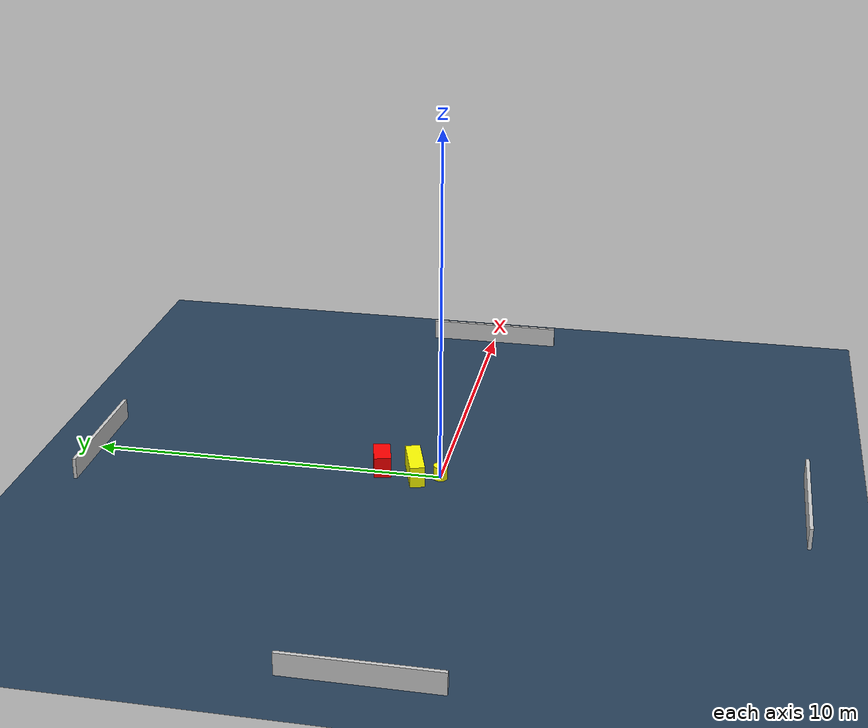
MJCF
<?xml version="1.0" ?>
<mujoco model="generated_environment">
  <option timestep="0.01" integrator="RK4" cone="elliptic"/>
  <default>
    <geom density="1"/>
  </default>
  <asset>
    <texture builtin="gradient" height="3072" name="skybox" rgb1="0.3 0.5 0.7" rgb2="0 0 0" type="skybox" width="512"/>
    <texture builtin="checker" height="300" name="groundplane" rgb1="0.2 0.3 0.4" rgb2="0.1 0.2 0.3" type="2d" width="300"/>
    <material name="groundplane" reflectance="0.2" texrepeat="5 5" texture="groundplane"/>
  </asset>
  <worldbody>
    <light dir="0 0 -1" directional="true" pos="0 0 1.5"/>
    <geom condim="3" friction="0.5 0.005 0.001" material="groundplane" name="floor" pos="0 0 0" size="0 0 0.05" type="plane"/>
    <body name="walls">
      <geom name="wall_1" condim="4" pos="-10.0 0.0 0.3" rgba="0.800000011920929 0.800000011920929 0.800000011920929 1.0" size="0.05 2.0 0.3" type="box"/>
      <geom name="wall_2" condim="4" pos="10.0 0.0 0.3" rgba="0.800000011920929 0.800000011920929 0.800000011920929 1.0" size="0.05 2.0 0.3" type="box"/>
      <geom name="wall_3" condim="4" pos="0.0 -10.0 0.3" rgba="0.800000011920929 0.800000011920929 0.800000011920929 1.0" size="2.0 0.05 0.3" type="box"/>
      <geom name="wall_4" condim="4" pos="0.0 10.0 0.3" rgba="0.800000011920929 0.800000011920929 0.800000011920929 1.0" size="2.0 0.05 0.3" type="box"/>
    </body>
    <body name="robot">
      <joint name="joint_x" type="slide" pos="0 0 0" axis="1 0 0"/>
      <joint name="joint_y" type="slide" pos="0 0 0" axis="0 1 0"/>
      <geom name="robot" type="cylinder" pos="0.0 0.0 0.2" size="0.2 0.2 0.0" mass="5.0" friction="1.0 0.005 0.0001" condim="4" rgba="1.0 1.0 0.0 1.0"/>
    </body>
    <body name="obstacle_1_movable">
      <geom name="obstacle_1_movable" condim="4" pos="0.011605564623852708 0.7302546006651104 0.3" euler="0 0 286.8159209614551" friction="0.0 0.005 0.001" rgba="1.0 1.0 0.0 1.0" size="0.21115298604767918 0.6948871418330148 0.3" type="box" mass="0.1"/>
      <joint type="free"/>
    </body>
    <body name="obstacle_2_static">
      <geom name="obstacle_2_static" condim="4" pos="0.15619118593578038 1.702225196114092 0.3" euler="0 0 104.15514868121586" friction="0.0 0.005 0.001" rgba="1.0 0.0 0.0 1.0" size="0.24158948750559212 0.4550655995469996 0.3" type="box"/>
    </body>
  </worldbody>
  <actuator>
    <motor name="actuator_x" joint="joint_x" gear="1" ctrlrange="-1 1"/>
    <motor name="actuator_y" joint="joint_y" gear="1" ctrlrange="-1 1"/>
  </actuator>
</mujoco>
